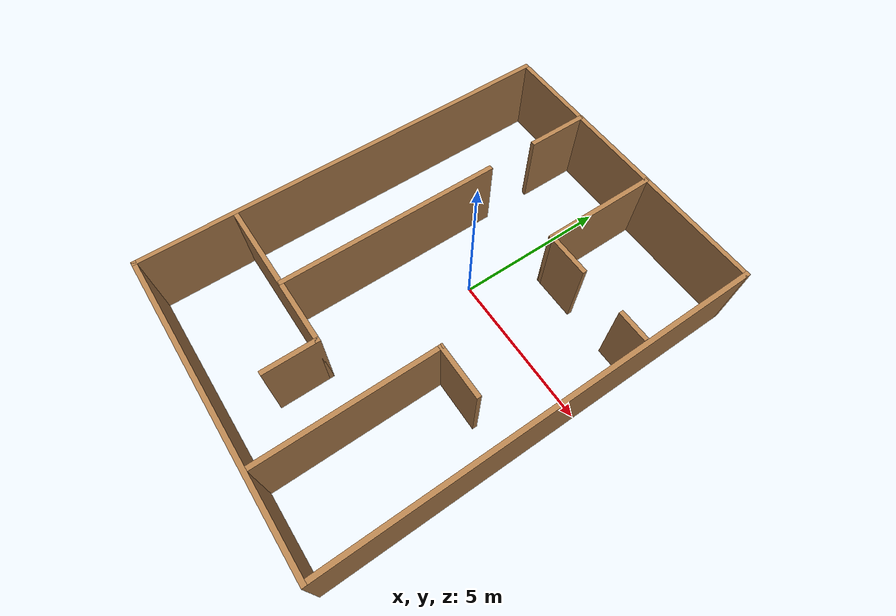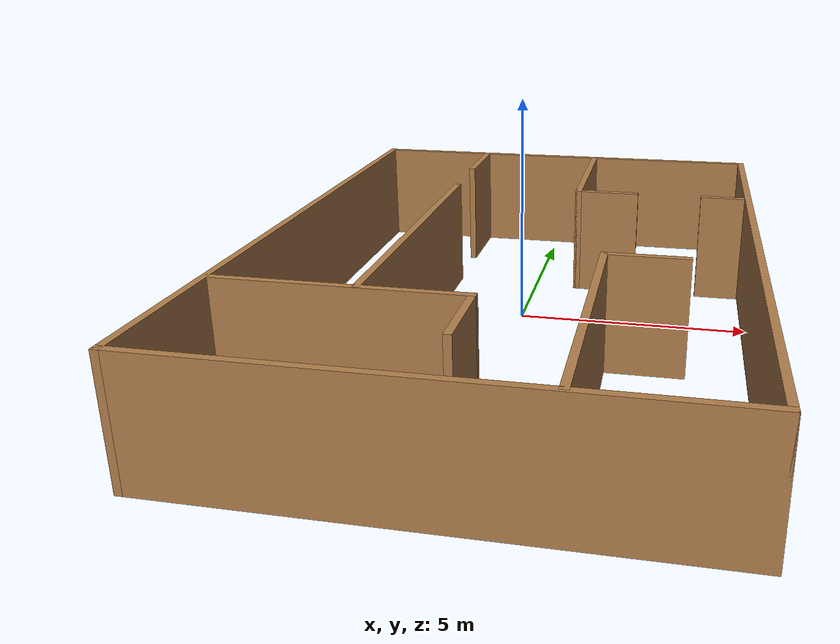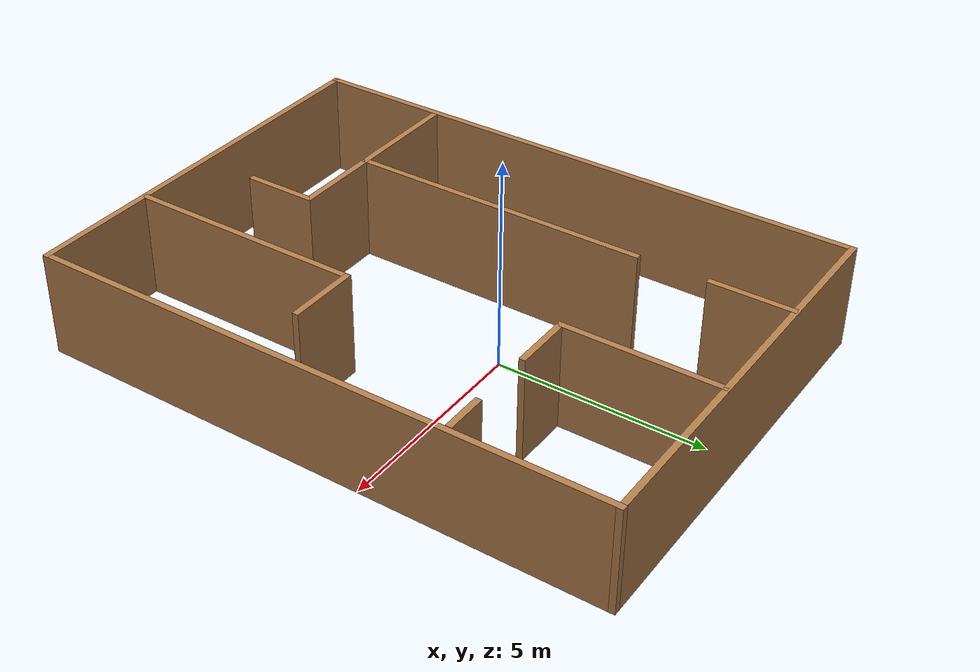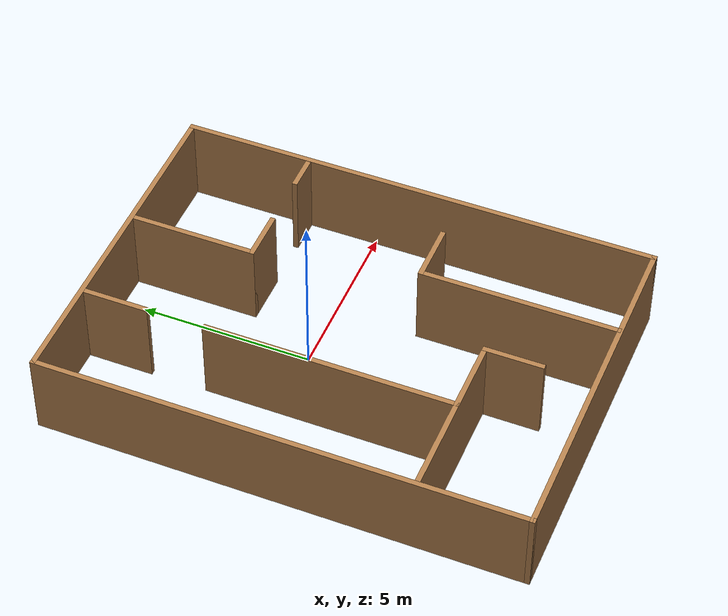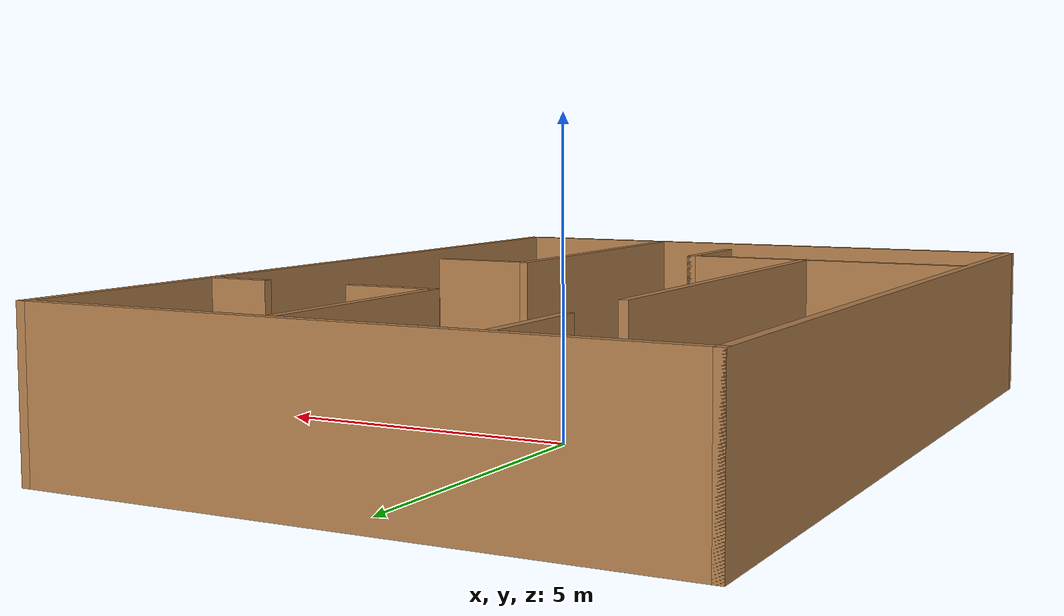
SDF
<?xml version='1.0'?>
<sdf version='1.7'>
  <model name='AA'>
    <pose>0.055723 -1.20728 0 0 -0 0</pose>
    <link name='Wall_45'>
      <collision name='Wall_45_Collision'>
        <geometry>
          <box>
            <size>10 0.15 2.5</size>
          </box>
        </geometry>
        <pose>0 0 1.25 0 -0 0</pose>
      </collision>
      <visual name='Wall_45_Visual'>
        <pose>0 0 1.25 0 -0 0</pose>
        <geometry>
          <box>
            <size>10 0.15 2.5</size>
          </box>
        </geometry>
        <material>
          <script>
            <uri>file://media/materials/scripts/gazebo.material</uri>
            <name>Gazebo/Wood</name>
          </script>
          <ambient>1 1 1 1</ambient>
        </material>
        <meta>
          <layer>0</layer>
        </meta>
      </visual>
      <pose>-0 -6.925 0 0 -0 0</pose>
    </link>
    <link name='Wall_53'>
      <collision name='Wall_53_Collision'>
        <geometry>
          <box>
            <size>14 0.15 2.5</size>
          </box>
        </geometry>
        <pose>0 0 1.25 0 -0 0</pose>
      </collision>
      <visual name='Wall_53_Visual'>
        <pose>0 0 1.25 0 -0 0</pose>
        <geometry>
          <box>
            <size>14 0.15 2.5</size>
          </box>
        </geometry>
        <material>
          <script>
            <uri>file://media/materials/scripts/gazebo.material</uri>
            <name>Gazebo/Wood</name>
          </script>
          <ambient>1 1 1 1</ambient>
        </material>
        <meta>
          <layer>0</layer>
        </meta>
      </visual>
      <pose>-4.925 0 0 0 -0 1.5708</pose>
    </link>
    <link name='Wall_55'>
      <collision name='Wall_55_Collision'>
        <geometry>
          <box>
            <size>14 0.15 2.5</size>
          </box>
        </geometry>
        <pose>0 0 1.25 0 -0 0</pose>
      </collision>
      <visual name='Wall_55_Visual'>
        <pose>0 0 1.25 0 -0 0</pose>
        <geometry>
          <box>
            <size>14 0.15 2.5</size>
          </box>
        </geometry>
        <material>
          <script>
            <uri>file://media/materials/scripts/gazebo.material</uri>
            <name>Gazebo/Wood</name>
          </script>
          <ambient>1 1 1 1</ambient>
        </material>
        <meta>
          <layer>0</layer>
        </meta>
      </visual>
      <pose>4.925 0 0 0 -0 1.5708</pose>
    </link>
    <link name='Wall_57'>
      <collision name='Wall_57_Collision'>
        <geometry>
          <box>
            <size>10 0.15 2.5</size>
          </box>
        </geometry>
        <pose>0 0 1.25 0 -0 0</pose>
      </collision>
      <visual name='Wall_57_Visual'>
        <pose>0 0 1.25 0 -0 0</pose>
        <geometry>
          <box>
            <size>10 0.15 2.5</size>
          </box>
        </geometry>
        <material>
          <script>
            <uri>file://media/materials/scripts/gazebo.material</uri>
            <name>Gazebo/Wood</name>
          </script>
          <ambient>1 1 1 1</ambient>
        </material>
        <meta>
          <layer>0</layer>
        </meta>
      </visual>
      <pose>-0 6.925 0 0 -0 0</pose>
    </link>
    <link name='Wall_78'>
      <collision name='Wall_78_Collision'>
        <geometry>
          <box>
            <size>5 0.15 2.5</size>
          </box>
        </geometry>
        <pose>0 0 1.25 0 -0 0</pose>
      </collision>
      <visual name='Wall_78_Visual'>
        <pose>0 0 1.25 0 -0 0</pose>
        <geometry>
          <box>
            <size>5 0.15 2.5</size>
          </box>
        </geometry>
        <material>
          <script>
            <uri>file://media/materials/scripts/gazebo.material</uri>
            <name>Gazebo/Wood</name>
          </script>
          <ambient>1 1 1 1</ambient>
        </material>
        <meta>
          <layer>0</layer>
        </meta>
      </visual>
      <pose>-2.42333 -3.83812 0 0 -0 0</pose>
    </link>
    <link name='Wall_79'>
      <collision name='Wall_79_Collision'>
        <geometry>
          <box>
            <size>1.75 0.15 2.5</size>
          </box>
        </geometry>
        <pose>0 0 1.25 0 -0 0</pose>
      </collision>
      <visual name='Wall_79_Visual'>
        <pose>0 0 1.25 0 -0 0</pose>
        <geometry>
          <box>
            <size>1.75 0.15 2.5</size>
          </box>
        </geometry>
        <material>
          <script>
            <uri>file://media/materials/scripts/gazebo.material</uri>
            <name>Gazebo/Wood</name>
          </script>
          <ambient>1 1 1 1</ambient>
        </material>
        <meta>
          <layer>0</layer>
        </meta>
      </visual>
      <pose>0.001667 -4.63812 0 0 -0 -1.5708</pose>
    </link>
    <link name='Wall_81'>
      <collision name='Wall_81_Collision'>
        <geometry>
          <box>
            <size>5.75 0.15 2.5</size>
          </box>
        </geometry>
        <pose>0 0 1.25 0 -0 0</pose>
      </collision>
      <visual name='Wall_81_Visual'>
        <pose>0 0 1.25 0 -0 0</pose>
        <geometry>
          <box>
            <size>5.75 0.15 2.5</size>
          </box>
        </geometry>
        <material>
          <script>
            <uri>file://media/materials/scripts/gazebo.material</uri>
            <name>Gazebo/Wood</name>
          </script>
          <ambient>1 1 1 1</ambient>
        </material>
        <meta>
          <layer>0</layer>
        </meta>
      </visual>
      <pose>1.98464 -4.0665 0 0 -0 1.5708</pose>
    </link>
    <link name='Wall_82'>
      <collision name='Wall_82_Collision'>
        <geometry>
          <box>
            <size>1.75 0.15 2.5</size>
          </box>
        </geometry>
        <pose>0 0 1.25 0 -0 0</pose>
      </collision>
      <visual name='Wall_82_Visual'>
        <pose>0 0 1.25 0 -0 0</pose>
        <geometry>
          <box>
            <size>1.75 0.15 2.5</size>
          </box>
        </geometry>
        <material>
          <script>
            <uri>file://media/materials/scripts/gazebo.material</uri>
            <name>Gazebo/Wood</name>
          </script>
          <ambient>1 1 1 1</ambient>
        </material>
        <meta>
          <layer>0</layer>
        </meta>
      </visual>
      <pose>2.78464 -1.2665 0 0 -0 0</pose>
    </link>
    <link name='Wall_86'>
      <collision name='Wall_86_Collision'>
        <geometry>
          <box>
            <size>7.25 0.15 2.5</size>
          </box>
        </geometry>
        <pose>0 0 1.25 0 -0 0</pose>
      </collision>
      <visual name='Wall_86_Visual'>
        <pose>0 0 1.25 0 -0 0</pose>
        <geometry>
          <box>
            <size>7.25 0.15 2.5</size>
          </box>
        </geometry>
        <material>
          <script>
            <uri>file://media/materials/scripts/gazebo.material</uri>
            <name>Gazebo/Wood</name>
          </script>
          <ambient>1 1 1 1</ambient>
        </material>
        <meta>
          <layer>0</layer>
        </meta>
      </visual>
      <pose>-2.08116 -0.267153 0 0 -0 1.5708</pose>
    </link>
    <link name='Wall_89'>
      <collision name='Wall_89_Collision'>
        <geometry>
          <box>
            <size>2 0.15 2.5</size>
          </box>
        </geometry>
        <pose>0 0 1.25 0 -0 0</pose>
      </collision>
      <visual name='Wall_89_Visual'>
        <pose>0 0 1.25 0 -0 0</pose>
        <geometry>
          <box>
            <size>2 0.15 2.5</size>
          </box>
        </geometry>
        <material>
          <script>
            <uri>file://media/materials/scripts/gazebo.material</uri>
            <name>Gazebo/Wood</name>
          </script>
          <ambient>1 1 1 1</ambient>
        </material>
        <meta>
          <layer>0</layer>
        </meta>
      </visual>
      <pose>-2.10765 5.96275 0 0 -0 1.5708</pose>
    </link>
    <link name='Wall_91'>
      <collision name='Wall_91_Collision'>
        <geometry>
          <box>
            <size>3.75 0.15 2.5</size>
          </box>
        </geometry>
        <pose>0 0 1.25 0 -0 0</pose>
      </collision>
      <visual name='Wall_91_Visual'>
        <pose>0 0 1.25 0 -0 0</pose>
        <geometry>
          <box>
            <size>3.75 0.15 2.5</size>
          </box>
        </geometry>
        <material>
          <script>
            <uri>file://media/materials/scripts/gazebo.material</uri>
            <name>Gazebo/Wood</name>
          </script>
          <ambient>1 1 1 1</ambient>
        </material>
        <meta>
          <layer>0</layer>
        </meta>
      </visual>
      <pose>0.94516 5.07829 0 0 -0 -1.5708</pose>
    </link>
    <link name='Wall_92'>
      <collision name='Wall_92_Collision'>
        <geometry>
          <box>
            <size>1.5 0.15 2.5</size>
          </box>
        </geometry>
        <pose>0 0 1.25 0 -0 0</pose>
      </collision>
      <visual name='Wall_92_Visual'>
        <pose>0 0 1.25 0 -0 0</pose>
        <geometry>
          <box>
            <size>1.5 0.15 2.5</size>
          </box>
        </geometry>
        <material>
          <script>
            <uri>file://media/materials/scripts/gazebo.material</uri>
            <name>Gazebo/Wood</name>
          </script>
          <ambient>1 1 1 1</ambient>
        </material>
        <meta>
          <layer>0</layer>
        </meta>
      </visual>
      <pose>1.62016 3.27829 0 0 -0 0</pose>
    </link>
    <link name='Wall_94'>
      <collision name='Wall_94_Collision'>
        <geometry>
          <box>
            <size>1 0.15 2.5</size>
          </box>
        </geometry>
        <pose>0 0 1.25 0 -0 0</pose>
      </collision>
      <visual name='Wall_94_Visual'>
        <pose>0 0 1.25 0 -0 0</pose>
        <geometry>
          <box>
            <size>1 0.15 2.5</size>
          </box>
        </geometry>
        <material>
          <script>
            <uri>file://media/materials/scripts/gazebo.material</uri>
            <name>Gazebo/Wood</name>
          </script>
          <ambient>1 1 1 1</ambient>
        </material>
        <meta>
          <layer>0</layer>
        </meta>
      </visual>
      <pose>4.33996 3.2721 0 0 -0 0</pose>
    </link>
    <static>1</static>
  </model>
</sdf>
